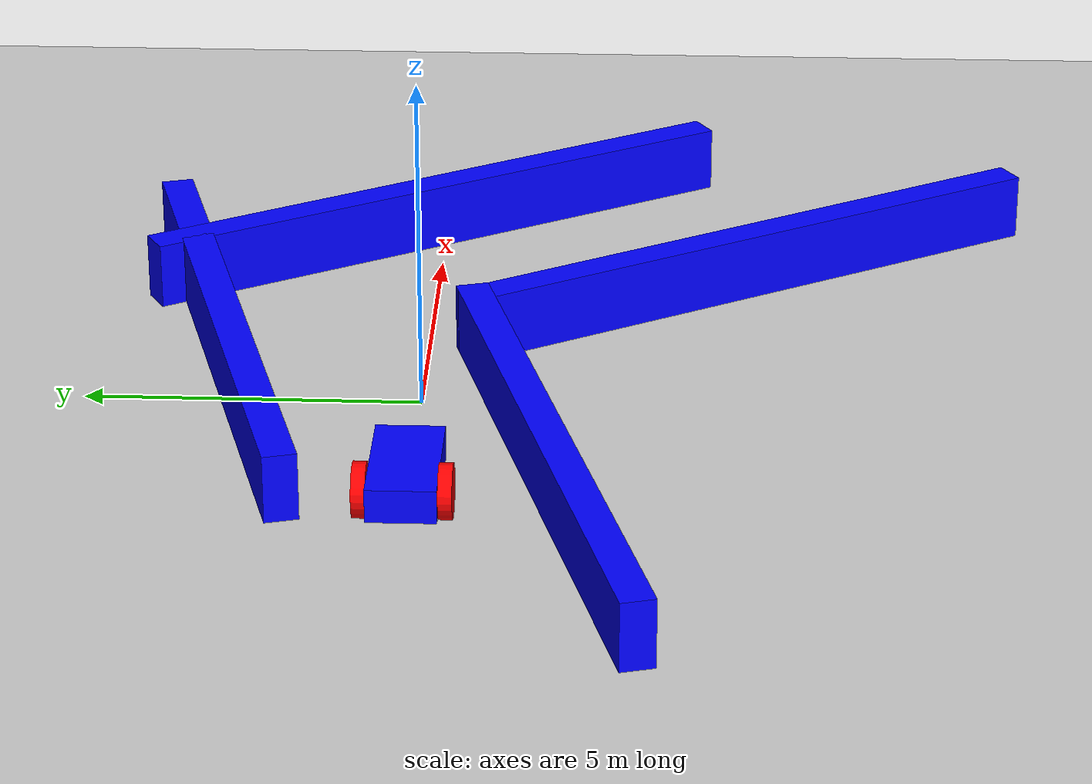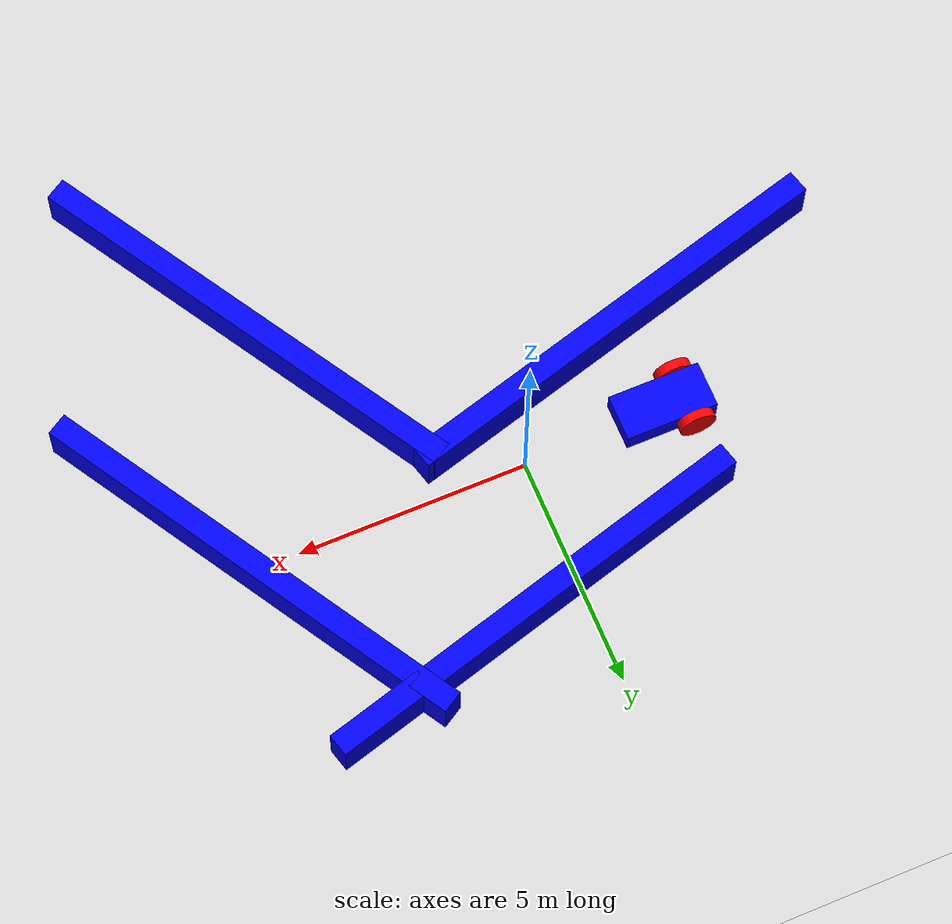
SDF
<?xml version="1.0" ?>
<sdf version="1.8">
    <world name="laberinto">
        <physics name="1ms" type="ignored">
            <max_step_size>0.001</max_step_size>
            <real_time_factor>1.0</real_time_factor>
        </physics>

        <!-- Plugins para cargar la escena -->
        <plugin
            filename="gz-sim-physics-system"
            name="gz::sim::systems::Physics">
        </plugin>
        <plugin
            filename="gz-sim-user-commands-system"
            name="gz::sim::systems::UserCommands">
        </plugin>
        <plugin
            filename="gz-sim-scene-broadcaster-system"
            name="gz::sim::systems::SceneBroadcaster">
        </plugin>

        <!-- Plugins de sensores -->
        <!-- IMU -->
        <plugin filename="gz-sim-imu-system"
            name="gz::sim::systems::Imu">
        </plugin>

        <!-- LiDAR -->
        <plugin
            filename="gz-sim-sensors-system"
            name="gz::sim::systems::Sensors">
            <render_engine>ogre2</render_engine>
        </plugin>

        <!-- Iluminación de la escena y del mundo -->
        <light type="directional" name="sun">
            <cast_shadows>true</cast_shadows>
            <pose>0 0 10 0 0 0</pose>
            <diffuse>0.8 0.8 0.8 1</diffuse>
            <specular>0.2 0.2 0.2 1</specular>
            <attenuation>
                <range>1000</range>
                <constant>0.9</constant>
                <linear>0.01</linear>
                <quadratic>0.001</quadratic>
            </attenuation>
            <direction>-0.5 0.1 -0.9</direction>
        </light>

        <!-- Suelo, necesario para no caer al vacío -->
        <model name="suelo">
            <static>true</static>
            <link name="link">
                <collision name="collision">
                <geometry>
                    <plane>
                    <normal>0 0 1</normal>
                    </plane>
                </geometry>
                </collision>
                <visual name="visual">
                <geometry>
                    <plane>
                    <normal>0 0 1</normal>
                    <size>100 100</size>
                    </plane>
                </geometry>
                <material>
                    <ambient>0.8 0.8 0.8 1</ambient>
                    <diffuse>0.8 0.8 0.8 1</diffuse>
                    <specular>0.8 0.8 0.8 1</specular>
                </material>
                </visual>
            </link>
        </model>

        <!-- Modelo del robot -->
        <model name='robot' canonical_link='chassis'>
            <pose relative_to='world'>-3.55 0 0 0 0 0</pose>

            <!-- Cuadro para colocar el LiDAR -->
            <frame name="lidar_frame" attached_to='chassis'>
                <!-- respecto del chassis -->
                <pose>0.8 0 0.5 0 0 0</pose>
            </frame>

            <link name='chassis'>
                <pose relative_to='__model__'>0.5 0 0.4 0 0 0</pose>

                <!--Propiedades de inercia de la masa del link, matiz de inercia -->
                <!-- valores por defecto del tutorial -->
                <inertial>
                    <mass>1.14395</mass>
                    <inertia>
                        <ixx>0.126164</ixx>
                        <ixy>0</ixy>
                        <ixz>0</ixz>
                        <iyy>0.416519</iyy>
                        <iyz>0</iyz>
                        <izz>0.481014</izz>
                    </inertia>
                </inertial>

                <!--Características visuales del robot -->
                <visual name='visual'>
                    <geometry>
                        <box>
                            <size>2.0 1.0 0.5</size> <!--en metros -->
                        </box>
                    </geometry>
                    <!-- Añadir color o material -->
                    <material>
                        <ambient>0.0 0.0 1.0 1</ambient>
                        <diffuse>0.0 0.0 1.0 1</diffuse>
                        <specular>0.0 0.0 1.0 1</specular>
                    </material>
                </visual>

                <!--Características de colisión del robot -->
                <collision name='collision'>
                    <geometry>
                        <box>
                            <size>2.0 1.0 0.5</size>
                        </box>
                    </geometry>
                </collision>

                <!--Sensor IMU -->
                <sensor name="imu_sensor" type="imu">
                    <always_on>1</always_on>
                    <update_rate>1</update_rate>
                    <visualize>true</visualize>
                    <topic>imu</topic>
                </sensor>

                <!--Sensor LiDAR -->
                <sensor name='gpu_lidar' type='gpu_lidar'>
                    <pose relative_to='lidar_frame'>0 0 0 0 0 0</pose>
                    <topic>lidar</topic>
                    <update_rate>10</update_rate>
                    <ray>
                        <scan>
                            <horizontal>
                                <samples>640</samples>
                                <resolution>1</resolution>
                                <min_angle>-1.5708</min_angle>
                                <max_angle>1.5708</max_angle>
                            </horizontal>
                            <vertical>
                                <samples>1</samples>
                                <resolution>0.01</resolution>
                                <min_angle>0</min_angle>
                                <max_angle>0</max_angle>
                            </vertical>
                        </scan>
                        <range>
                            <min>0.08</min>
                            <max>10.0</max>
                            <resolution>0.01</resolution>
                        </range>
                    </ray>
                    <always_on>1</always_on>
                    <visualize>true</visualize>
                </sensor>
            </link>

            <!-- Rueda izquierda -->
            <link name='rueda_izq'>
                <!--ángulos en radianes-->
                <pose relative_to="chassis">-0.5 0.6 0 -1.5707 0 0</pose>

                <inertial>
                    <mass>2</mass>
                    <inertia>
                        <ixx>0.145833</ixx>
                        <ixy>0</ixy>
                        <ixz>0</ixz>
                        <iyy>0.145833</iyy>
                        <iyz>0</iyz>
                        <izz>0.125</izz>
                    </inertia>
                </inertial>

                <visual name='visual'>
                    <geometry>
                        <cylinder>
                            <radius>0.4</radius>
                            <length>0.2</length>
                        </cylinder>
                    </geometry>
                    <material>
                        <ambient>1.0 0.0 0.0 1</ambient>
                        <diffuse>1.0 0.0 0.0 1</diffuse>
                        <specular>1.0 0.0 0.0 1</specular>
                    </material>
                </visual>

                <collision name='collision'>
                    <geometry>
                        <cylinder>
                            <radius>0.4</radius>
                            <length>0.2</length>
                        </cylinder>
                    </geometry>
                </collision>
            </link>

            <!-- Rueda derecha -->
            <link name='rueda_der'>

                <pose relative_to="chassis">-0.5 -0.6 0 -1.5707 0 0</pose>

                <inertial>
                    <mass>1</mass>
                    <inertia>
                        <ixx>0.145833</ixx>
                        <ixy>0</ixy>
                        <ixz>0</ixz>
                        <iyy>0.145833</iyy>
                        <iyz>0</iyz>
                        <izz>0.125</izz>
                    </inertia>
                </inertial>

                <visual name='visual'>
                    <geometry>
                        <cylinder>
                            <radius>0.4</radius>
                            <length>0.2</length>
                        </cylinder>
                    </geometry>
                    <material>
                        <ambient>1.0 0.0 0.0 1</ambient>
                        <diffuse>1.0 0.0 0.0 1</diffuse>
                        <specular>1.0 0.0 0.0 1</specular>
                    </material>
                </visual>

                <collision name='collision'>
                    <geometry>
                        <cylinder>
                            <radius>0.4</radius>
                            <length>0.2</length>
                        </cylinder>
                    </geometry>
                </collision>
            </link>

            <!-- Cuadro para la rueda giratoria -->
            <frame name="caster_frame" attached_to='chassis'>
                <pose>0.8 0 -0.2 0 0 0</pose>
            </frame>

            <!-- Rueda giratoria -->
            <link name='caster'>

                <pose relative_to='caster_frame'/>

                <inertial>
                    <mass>1</mass>
                    <inertia>
                        <ixx>0.1</ixx>
                        <ixy>0</ixy>
                        <ixz>0</ixz>
                        <iyy>0.1</iyy>
                        <iyz>0</iyz>
                        <izz>0.1</izz>
                    </inertia>
                </inertial>

                <visual name='visual'>
                    <geometry>
                        <sphere>
                            <radius>0.2</radius>
                        </sphere>
                    </geometry>
                    <material>
                        <ambient>0.0 1 0.0 1</ambient>
                        <diffuse>0.0 1 0.0 1</diffuse>
                        <specular>0.0 1 0.0 1</specular>
                    </material>
                </visual>

                <collision name='collision'>
                    <geometry>
                        <sphere>
                            <radius>0.2</radius>
                        </sphere>
                    </geometry>
                </collision>
            </link>

            <!--Articulación para rotar la rueda izquierda -->
            <joint name='rueda_izq_joint' type='revolute'>
                <pose relative_to='rueda_izq'/>
                <parent>chassis</parent>
                <child>rueda_izq</child>
                <axis>
                    <!-- Dada la posición y orientación, giro sobre el eje y-->
                    <xyz expressed_in='__model__'>0 1 0</xyz>
                    <limit>
                        <lower>-1.79769e+308</lower> <!--negativo infinito-->
                        <upper>1.79769e+308</upper> <!--positivo infinito-->
                    </limit>
                </axis>
            </joint>

            <!--Articulación para rotar la rueda derecha -->
            <joint name='rueda_der_joint' type='revolute'>
                <pose relative_to='rueda_der'/>
                <parent>chassis</parent>
                <child>rueda_der</child>
                <axis>
                    <!-- Dada la posición y orientación, giro sobre el eje y-->
                    <xyz expressed_in='__model__'>0 1 0</xyz>
                    <limit>
                        <lower>-1.79769e+308</lower> <!--negativo infinito-->
                        <upper>1.79769e+308</upper> <!--positivo infinito-->
                    </limit>
                </axis>
            </joint>

            <!--Articulación para la rueda giratoria -->
            <joint name='caster_wheel' type='ball'>
                <parent>chassis</parent>
                <child>caster</child>
            </joint>

            <!--Plugin para un control diferencial-->
            <plugin
                filename="gz-sim-diff-drive-system"
                name="gz::sim::systems::DiffDrive">
                <left_joint>rueda_izq_joint</left_joint>
                <right_joint>rueda_der_joint</right_joint>
                <wheel_separation>1.2</wheel_separation>
                <wheel_radius>0.4</wheel_radius>
                <odom_publish_frequency>1</odom_publish_frequency>
                <topic>cmd_vel</topic>
            </plugin>
        </model>

        <!--Pared izquierda-->
        <model name='pared_izq_1'>
            <static>true</static>
            <pose>6.03 0.12 0 0 0 0.54</pose>
            <link name='box'>
                <visual name='visual'>
                    <geometry>
                        <box>
                            <size>0.5 10.0 2.0</size>
                        </box>
                    </geometry>
                    <material>
                        <ambient>0.0 0.0 1.0 1</ambient>
                        <diffuse>0.0 0.0 1.0 1</diffuse>
                        <specular>0.0 0.0 1.0 1</specular>
                    </material>
                </visual>
                <collision name='collision'>
                    <geometry>
                        <box>
                            <size>0.5 10.0 2.0</size>
                        </box>
                    </geometry>
                </collision>
            </link>
        </model>
        <model name='pared_izq_2'>
            <static>true</static>
            <pose> 1.08 3.02 0 0 0 -1.3</pose>
            <link name='box'>
                <visual name='visual'>
                    <geometry>
                        <box>
                            <size>0.5 10.0 2.0</size>
                        </box>
                    </geometry>
                    <material>
                        <ambient>0.0 0.0 1.0 1</ambient>
                        <diffuse>0.0 0.0 1.0 1</diffuse>
                        <specular>0.0 0.0 1.0 1</specular>
                    </material>
                </visual>
                <collision name='collision'>
                    <geometry>
                        <box>
                            <size>0.5 10.0 2.0</size>
                        </box>
                    </geometry>
                </collision>
            </link>
        </model>

        <!--Pared derecha-->
        <model name='pared_der_1'>
            <static>true</static>
            <pose>-2.77 -1.98 0 0 0 -1.3</pose>
            <link name='box'>
                <visual name='visual'>
                    <geometry>
                        <box>
                            <size>0.5 10.0 2.0</size>
                        </box>
                    </geometry>
                    <material>
                        <ambient>0.0 0.0 1.0 1</ambient>
                        <diffuse>0.0 0.0 1.0 1</diffuse>
                        <specular>0.0 0.0 1.0 1</specular>
                    </material>
                </visual>
                <collision name='collision'>
                    <geometry>
                        <box>
                            <size>0.5 10.0 2.0</size>
                        </box>
                    </geometry>
                </collision>
            </link>
        </model>
        <model name='pared_der_2'>
            <static>true</static>
            <pose>4.2 -4.85 0 0 0 0.54</pose>
            <link name='box'>
                <visual name='visual'>
                    <geometry>
                        <box>
                            <size>0.5 10.0 2.0</size>
                        </box>
                    </geometry>
                    <material>
                        <ambient>0.0 0.0 1.0 1</ambient>
                        <diffuse>0.0 0.0 1.0 1</diffuse>
                        <specular>0.0 0.0 1.0 1</specular>
                    </material>
                </visual>
                <collision name='collision'>
                    <geometry>
                        <box>
                            <size>0.5 10.0 2.0</size>
                        </box>
                    </geometry>
                </collision>
            </link>
        </model>
    </world>
</sdf>
